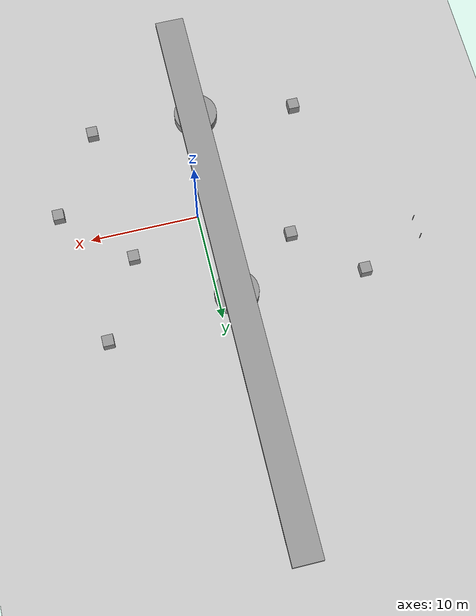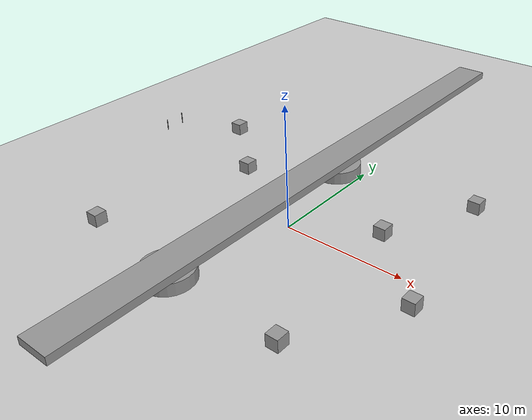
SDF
<sdf version="1.6">
 <world name="default">
  <model name="ground_plane">
   <static>1</static>
   <link name="link">
    <collision name="collision">
     <geometry><plane><normal>0 0 1</normal><size>100 100</size></plane></geometry>
     <surface><friction><ode><mu>100</mu><mu2>50</mu2></ode></friction></surface>
    </collision>
    <visual name="visual">
     <cast_shadows>0</cast_shadows>
     <geometry><plane><normal>0 0 1</normal><size>100 100</size></plane></geometry>
     <material>
      <script><uri>file://media/materials/scripts/gazebo.material</uri><name>Gazebo/Grey</name></script>
     </material>
    </visual>
   </link>
  </model>
  <model name="unit_cylinderbig">
   <link name="link">
    <inertial>
     <mass>100000</mass>
     <inertia><ixx>108727</ixx><ixy>0</ixy><ixz>0</ixz><iyy>108727</iyy><iyz>0</iyz><izz>200787</izz></inertia>
    </inertial>
    <visual name="visual">
     <geometry><cylinder><radius>2.00393</radius><length>1</length></cylinder></geometry>
     <material>
      <script><name>Gazebo/Grey</name><uri>file://media/materials/scripts/gazebo.material</uri></script>
      <shader type="vertex"><normal_map>__default__</normal_map></shader>
     </material>
    </visual>
    <collision name="collision">
     <geometry><cylinder><radius>2.00393</radius><length>1</length></cylinder></geometry>
     <surface>
      <friction>
       <ode><mu>1</mu><mu2>1</mu2><fdir1>0 0 0</fdir1><slip1>0</slip1><slip2>0</slip2></ode>
       <torsional>
        <coefficient>1</coefficient>
        <patch_radius>0</patch_radius>
        <surface_radius>0</surface_radius>
        <use_patch_radius>1</use_patch_radius>
        <ode><slip>0</slip></ode>
       </torsional>
      </friction>
      <bounce><restitution_coefficient>0</restitution_coefficient><threshold>1e+06</threshold></bounce>
      <contact>
       <collide_without_contact>0</collide_without_contact>
       <collide_without_contact_bitmask>1</collide_without_contact_bitmask>
       <collide_bitmask>1</collide_bitmask>
       <ode>
        <soft_cfm>0</soft_cfm>
        <soft_erp>0.2</soft_erp>
        <kp>1e+13</kp>
        <kd>1</kd>
        <max_vel>0.01</max_vel>
        <min_depth>0</min_depth>
       </ode>
       <bullet>
        <split_impulse>1</split_impulse>
        <split_impulse_penetration_threshold>-0.01</split_impulse_penetration_threshold>
        <soft_cfm>0</soft_cfm>
        <soft_erp>0.2</soft_erp>
        <kp>1e+13</kp>
        <kd>1</kd>
       </bullet>
      </contact>
     </surface>
    </collision>
   </link>
   <static>0</static>
   <pose>-1.66895 8.29954 0.923477 0 0 -0.22077</pose>
  </model>
  <model name="unit_box">
   <pose>-1.75201 6.25449 1.74751 -1e-06 2e-06 0.000596</pose>
   <link name="link">
    <inertial>
     <mass>1</mass>
     <inertia>
      <ixx>0.166667</ixx>
      <ixy>0</ixy>
      <ixz>0</ixz>
      <iyy>0.166667</iyy>
      <iyz>0</iyz>
      <izz>0.166667</izz>
     </inertia>
    </inertial>
    <collision name="collision"><geometry><box><size>2.69807 52.3774 0.648075</size></box></geometry></collision>
    <visual name="visual">
     <geometry><box><size>2.69807 52.3774 0.648075</size></box></geometry>
     <material>
      <script><name>Gazebo/Grey</name><uri>file://media/materials/scripts/gazebo.material</uri></script>
     </material>
    </visual>
   </link>
  </model>
  <model name="unit_cylinderbig_clone">
   <link name="link">
    <inertial>
     <mass>100000</mass>
     <inertia><ixx>108727</ixx><ixy>0</ixy><ixz>0</ixz><iyy>108727</iyy><iyz>0</iyz><izz>200787</izz></inertia>
    </inertial>
    <visual name="visual">
     <geometry><cylinder><radius>2.00393</radius><length>1</length></cylinder></geometry>
     <material>
      <script><name>Gazebo/Grey</name><uri>file://media/materials/scripts/gazebo.material</uri></script>
      <shader type="vertex"><normal_map>__default__</normal_map></shader>
     </material>
    </visual>
    <collision name="collision">
     <geometry><cylinder><radius>2.00393</radius><length>1</length></cylinder></geometry>
     <surface>
      <friction>
       <ode><mu>1</mu><mu2>1</mu2><fdir1>0 0 0</fdir1><slip1>0</slip1><slip2>0</slip2></ode>
       <torsional>
        <coefficient>1</coefficient>
        <patch_radius>0</patch_radius>
        <surface_radius>0</surface_radius>
        <use_patch_radius>1</use_patch_radius>
        <ode><slip>0</slip></ode>
       </torsional>
      </friction>
      <bounce><restitution_coefficient>0</restitution_coefficient><threshold>1e+06</threshold></bounce>
      <contact>
       <collide_without_contact>0</collide_without_contact>
       <collide_without_contact_bitmask>1</collide_without_contact_bitmask>
       <collide_bitmask>1</collide_bitmask>
       <ode>
        <soft_cfm>0</soft_cfm>
        <soft_erp>0.2</soft_erp>
        <kp>1e+13</kp>
        <kd>1</kd>
        <max_vel>0.01</max_vel>
        <min_depth>0</min_depth>
       </ode>
       <bullet>
        <split_impulse>1</split_impulse>
        <split_impulse_penetration_threshold>-0.01</split_impulse_penetration_threshold>
        <soft_cfm>0</soft_cfm>
        <soft_erp>0.2</soft_erp>
        <kp>1e+13</kp>
        <kd>1</kd>
       </bullet>
      </contact>
     </surface>
    </collision>
   </link>
   <static>0</static>
   <pose>-2.03712 -9.869 0.923479 0 0 -0.22077</pose>
  </model>
  <model name="unit_cylinder">
   <pose>-19.1037 6.86569 0.923525 1.7e-05 -8e-06 -0.021629</pose>
   <link name="link">
    <inertial>
     <mass>1</mass>
     <inertia><ixx>0.145833</ixx><ixy>0</ixy><ixz>0</ixz><iyy>0.145833</iyy><iyz>0</iyz><izz>0.125</izz></inertia>
    </inertial>
    <collision name="collision">
     <geometry><cylinder><radius>0.033132</radius><length>1</length></cylinder></geometry>
    </collision>
    <visual name="visual">
     <geometry><cylinder><radius>0.033132</radius><length>1</length></cylinder></geometry>
     <material>
      <script><name>Gazebo/Grey</name><uri>file://media/materials/scripts/gazebo.material</uri></script>
     </material>
    </visual>
   </link>
  </model>
  <model name="unit_cylinder_clone_21">
   <pose>-19 4.99998 0.923525 3.1e-05 -1.4e-05 -0.001139</pose>
   <link name="link">
    <inertial>
     <mass>1</mass>
     <inertia><ixx>0.145833</ixx><ixy>0</ixy><ixz>0</ixz><iyy>0.145833</iyy><iyz>0</iyz><izz>0.125</izz></inertia>
    </inertial>
    <collision name="collision">
     <geometry><cylinder><radius>0.0331322</radius><length>1</length></cylinder></geometry>
    </collision>
    <visual name="visual">
     <geometry><cylinder><radius>0.0331322</radius><length>1</length></cylinder></geometry>
     <material>
      <script><name>Gazebo/Grey</name><uri>file://media/materials/scripts/gazebo.material</uri></script>
     </material>
    </visual>
   </link>
  </model>
  <model name="unit_box_0">
   <pose>-13.3496 8.80663 0.923529 0 -1e-06 -6e-06</pose>
   <link name="link">
    <inertial>
     <mass>1</mass>
     <inertia>
      <ixx>0.166667</ixx>
      <ixy>0</ixy>
      <ixz>0</ixz>
      <iyy>0.166667</iyy>
      <iyz>0</iyz>
      <izz>0.166667</izz>
     </inertia>
    </inertial>
    <collision name="collision"><geometry><box><size>1 1 1</size></box></geometry></collision>
    <visual name="visual">
     <geometry><box><size>1 1 1</size></box></geometry>
     <material>
      <script><name>Gazebo/Grey</name><uri>file://media/materials/scripts/gazebo.material</uri></script>
     </material>
    </visual>
   </link>
  </model>
  <model name="unit_box_1">
   <pose>-11.2267 -8.70888 0.923525 -0 8e-06 -1e-06</pose>
   <link name="link">
    <inertial>
     <mass>1</mass>
     <inertia>
      <ixx>0.166667</ixx>
      <ixy>0</ixy>
      <ixz>0</ixz>
      <iyy>0.166667</iyy>
      <iyz>0</iyz>
      <izz>0.166667</izz>
     </inertia>
    </inertial>
    <collision name="collision"><geometry><box><size>1 1 1</size></box></geometry></collision>
    <visual name="visual">
     <geometry><box><size>1 1 1</size></box></geometry>
     <material>
      <script><name>Gazebo/Grey</name><uri>file://media/materials/scripts/gazebo.material</uri></script>
     </material>
    </visual>
   </link>
  </model>
  <model name="unit_box_2">
   <pose>-7.73408 3.92575 0.923529 0 1e-06 -6e-06</pose>
   <link name="link">
    <inertial>
     <mass>1</mass>
     <inertia>
      <ixx>0.166667</ixx>
      <ixy>0</ixy>
      <ixz>0</ixz>
      <iyy>0.166667</iyy>
      <iyz>0</iyz>
      <izz>0.166667</izz>
     </inertia>
    </inertial>
    <collision name="collision"><geometry><box><size>1 1 1</size></box></geometry></collision>
    <visual name="visual">
     <geometry><box><size>1 1 1</size></box></geometry>
     <material>
      <script><name>Gazebo/Grey</name><uri>file://media/materials/scripts/gazebo.material</uri></script>
     </material>
    </visual>
   </link>
  </model>
  <model name="unit_box_3">
   <pose>10.2886 10.0942 0.923525 0 -8e-06 -1.1e-05</pose>
   <link name="link">
    <inertial>
     <mass>1</mass>
     <inertia>
      <ixx>0.166667</ixx>
      <ixy>0</ixy>
      <ixz>0</ixz>
      <iyy>0.166667</iyy>
      <iyz>0</iyz>
      <izz>0.166667</izz>
     </inertia>
    </inertial>
    <collision name="collision"><geometry><box><size>1 1 1</size></box></geometry></collision>
    <visual name="visual">
     <geometry><box><size>1 1 1</size></box></geometry>
     <material>
      <script><name>Gazebo/Grey</name><uri>file://media/materials/scripts/gazebo.material</uri></script>
     </material>
    </visual>
   </link>
  </model>
  <model name="unit_box_4">
   <pose>6.52872 2.86043 0.923529 0 -1e-06 -6e-06</pose>
   <link name="link">
    <inertial>
     <mass>1</mass>
     <inertia>
      <ixx>0.166667</ixx>
      <ixy>0</ixy>
      <ixz>0</ixz>
      <iyy>0.166667</iyy>
      <iyz>0</iyz>
      <izz>0.166667</izz>
     </inertia>
    </inertial>
    <collision name="collision"><geometry><box><size>1 1 1</size></box></geometry></collision>
    <visual name="visual">
     <geometry><box><size>1 1 1</size></box></geometry>
     <material>
      <script><name>Gazebo/Grey</name><uri>file://media/materials/scripts/gazebo.material</uri></script>
     </material>
    </visual>
   </link>
  </model>
  <model name="unit_box_5">
   <pose>12.3707 -2.64139 0.923525 -0 8e-06 -1e-06</pose>
   <link name="link">
    <inertial>
     <mass>1</mass>
     <inertia>
      <ixx>0.166667</ixx>
      <ixy>0</ixy>
      <ixz>0</ixz>
      <iyy>0.166667</iyy>
      <iyz>0</iyz>
      <izz>0.166667</izz>
     </inertia>
    </inertial>
    <collision name="collision"><geometry><box><size>1 1 1</size></box></geometry></collision>
    <visual name="visual">
     <geometry><box><size>1 1 1</size></box></geometry>
     <material>
      <script><name>Gazebo/Grey</name><uri>file://media/materials/scripts/gazebo.material</uri></script>
     </material>
    </visual>
   </link>
  </model>
  <model name="unit_box_6">
   <pose>7.78818 -10.1939 0.923529 0 1e-06 -6e-06</pose>
   <link name="link">
    <inertial>
     <mass>1</mass>
     <inertia>
      <ixx>0.166667</ixx>
      <ixy>0</ixy>
      <ixz>0</ixz>
      <iyy>0.166667</iyy>
      <iyz>0</iyz>
      <izz>0.166667</izz>
     </inertia>
    </inertial>
    <collision name="collision"><geometry><box><size>1 1 1</size></box></geometry></collision>
    <visual name="visual">
     <geometry><box><size>1 1 1</size></box></geometry>
     <material>
      <script><name>Gazebo/Grey</name><uri>file://media/materials/scripts/gazebo.material</uri></script>
     </material>
    </visual>
   </link>
  </model>
 </world>
</sdf>
